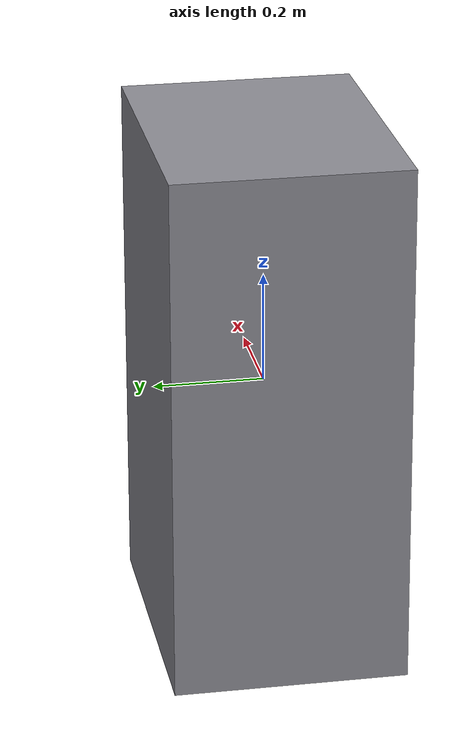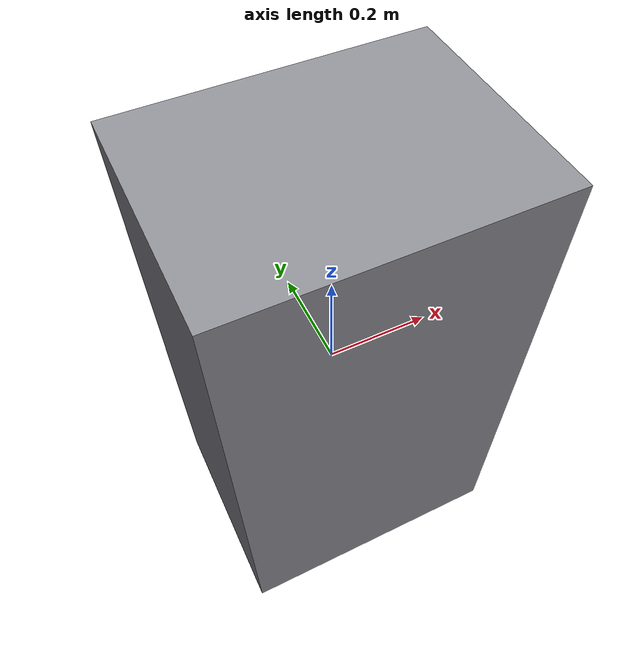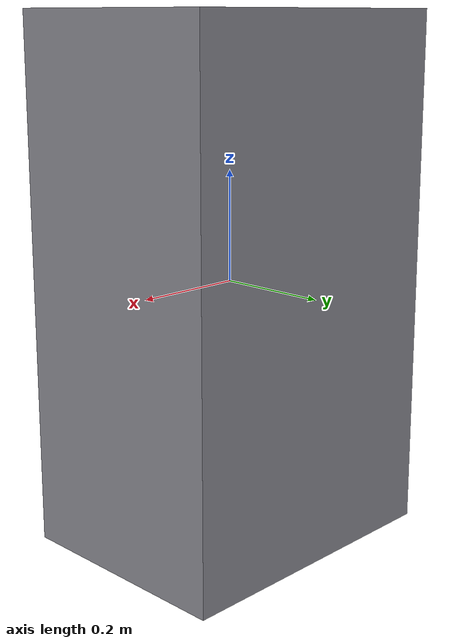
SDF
<?xml version="1.0"?>
<sdf version="1.6">
  <model name="BMWCart">
    <static>true</static>
    <link name="link">
      <collision name="col">
        <geometry>
          <box>
            <size>0.55 0.42 0.95</size>
          </box>
        </geometry>
      </collision>
      <visual name="vis">
        <geometry>
          <box>
            <size>0.55 0.42 0.95</size>
          </box>
        </geometry>
        <material>
          <ambient>0.55 0.55 0.58 1</ambient>
          <diffuse>0.55 0.55 0.58 1</diffuse>
        </material>
      </visual>
    </link>
  </model>
</sdf>
